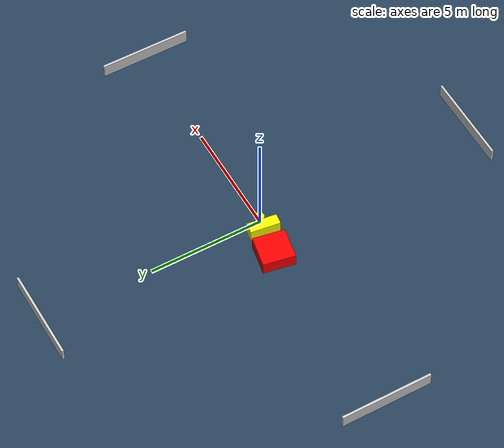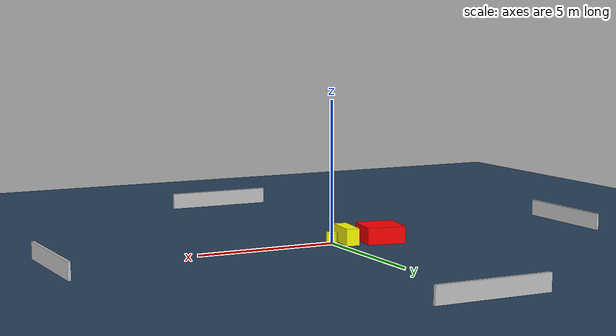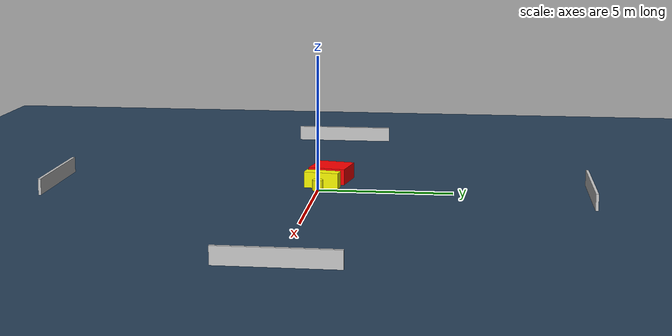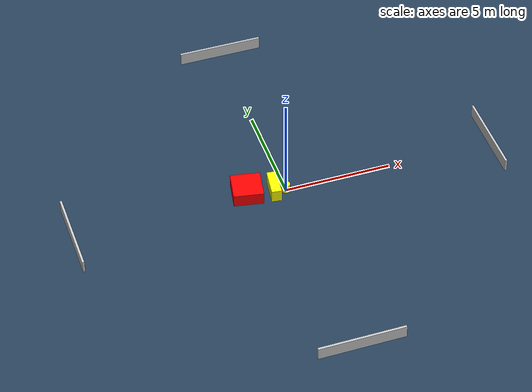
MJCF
<?xml version="1.0" ?>
<mujoco model="generated_environment">
  <option timestep="0.01" integrator="RK4" cone="elliptic"/>
  <default>
    <geom density="1"/>
  </default>
  <asset>
    <texture builtin="gradient" height="3072" name="skybox" rgb1="0.3 0.5 0.7" rgb2="0 0 0" type="skybox" width="512"/>
    <texture builtin="checker" height="300" name="groundplane" rgb1="0.2 0.3 0.4" rgb2="0.1 0.2 0.3" type="2d" width="300"/>
    <material name="groundplane" reflectance="0.2" texrepeat="5 5" texture="groundplane"/>
  </asset>
  <worldbody>
    <light dir="0 0 -1" directional="true" pos="0 0 1.5"/>
    <geom condim="3" friction="0.5 0.005 0.001" material="groundplane" name="floor" pos="0 0 0" size="0 0 0.05" type="plane"/>
    <body name="walls">
      <geom name="wall_1" condim="4" pos="-10.0 0.0 0.3" rgba="0.800000011920929 0.800000011920929 0.800000011920929 1.0" size="0.05 2.0 0.3" type="box"/>
      <geom name="wall_2" condim="4" pos="10.0 0.0 0.3" rgba="0.800000011920929 0.800000011920929 0.800000011920929 1.0" size="0.05 2.0 0.3" type="box"/>
      <geom name="wall_3" condim="4" pos="0.0 -10.0 0.3" rgba="0.800000011920929 0.800000011920929 0.800000011920929 1.0" size="2.0 0.05 0.3" type="box"/>
      <geom name="wall_4" condim="4" pos="0.0 10.0 0.3" rgba="0.800000011920929 0.800000011920929 0.800000011920929 1.0" size="2.0 0.05 0.3" type="box"/>
    </body>
    <body name="robot">
      <joint name="joint_x" type="slide" pos="0 0 0" axis="1 0 0"/>
      <joint name="joint_y" type="slide" pos="0 0 0" axis="0 1 0"/>
      <geom name="robot" type="cylinder" pos="0.0 0.0 0.2" size="0.2 0.2 0.0" mass="5.0" friction="1.0 0.005 0.0001" condim="4" rgba="1.0 1.0 0.0 1.0"/>
    </body>
    <body name="obstacle_1_movable">
      <geom name="obstacle_1_movable" condim="4" pos="-0.5249266200990259 0.11334863917682117 0.3" euler="0 0 82.28467189528038" friction="0.0 0.005 0.001" rgba="1.0 1.0 0.0 1.0" size="0.653477175106112 0.23342118499511805 0.3" type="box" mass="0.1"/>
      <joint type="free"/>
    </body>
    <body name="obstacle_2_static">
      <geom name="obstacle_2_static" condim="4" pos="-1.7545726249394162 0.3293287762406871 0.3" euler="0 0 169.46858180970798" friction="0.0 0.005 0.001" rgba="1.0 0.0 0.0 1.0" size="0.6910998213570152 0.7027422689243101 0.3" type="box"/>
    </body>
  </worldbody>
  <actuator>
    <motor name="actuator_x" joint="joint_x" gear="1" ctrlrange="-1 1"/>
    <motor name="actuator_y" joint="joint_y" gear="1" ctrlrange="-1 1"/>
  </actuator>
</mujoco>
